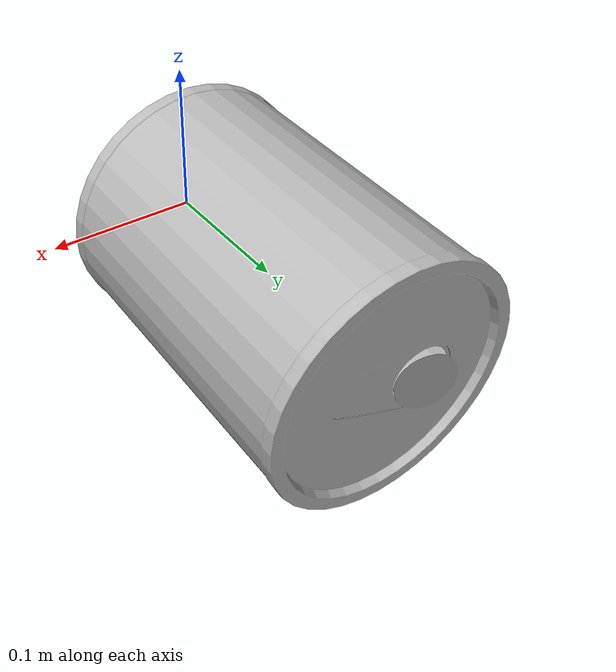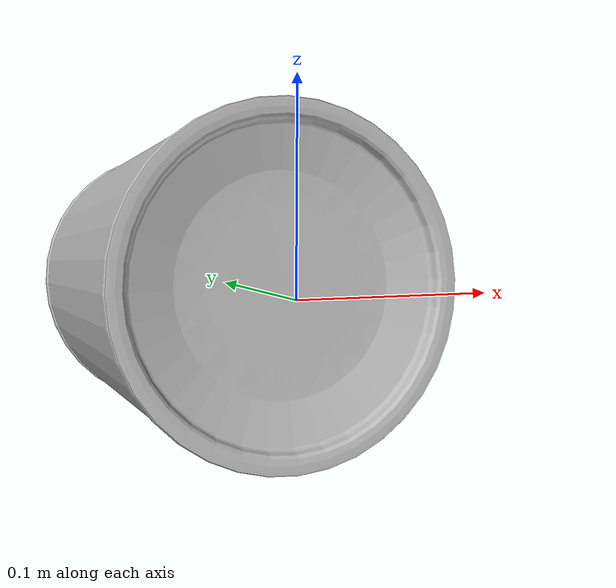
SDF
<?xml version="1.0" ?>
<sdf version="1.6">
  <model name="can_buoy">
    <link name="link">
      <inertial>
        <pose>0 0 -2 0 0 0</pose>
        <!-- Mass determined based on buoyancy geometry so object
             floats at mid-point of sphere -->
        <mass>20</mass>
        <!-- Mark only - based on cylinder -->
        <inertia>
          <ixx>1.0</ixx>
          <ixy>0</ixy>
          <ixz>0</ixz>
          <iyy>1.0</iyy>
          <iyz>0</iyz>
          <izz>0.1</izz>
        </inertia>
      </inertial>
      <collision name="can_collision">
        <pose>0 0 0.06 0 0 0</pose>
        <geometry>
          <box>
            <size>0.30 0.10 0.1</size>
          </box>
        </geometry>
      </collision>
      <visual name="can_visual">
        <geometry>
	        <mesh><uri>model://can_buoy/meshes/can_buoy.DAE</uri>
            <scale>0.2 0.2 0.2</scale>
          </mesh>
        </geometry>
      </visual>
    </link>
    <plugin name="WaterBottleBuoyancyPlugin" filename="libbuoyancy_gazebo_plugin.so">
      <wave_model>ocean_waves</wave_model>
      <fluid_density>1000</fluid_density>
      <fluid_level>0.0</fluid_level>
      <linear_drag>25.0</linear_drag>
      <angular_drag>2.0</angular_drag>
      <buoyancy name="buoyancy_sphere">
        <link_name>link</link_name>
        <pose>0 0 0.1 0 0 0</pose>
        <geometry>
          <sphere>
            <radius>0.325</radius>
          </sphere>
        </geometry>
      </buoyancy>
    </plugin>
    <plugin name="WaterBottleFollowPlugin" filename="libfollow_plugin.so">
      <link_name>link</link_name>
      <loop_forever>true</loop_forever>
      <waypoints>
        <waypoint>-554 172</waypoint>
        <waypoint>-552 168</waypoint>
      </waypoints>
    </plugin>
  </model>
</sdf>
